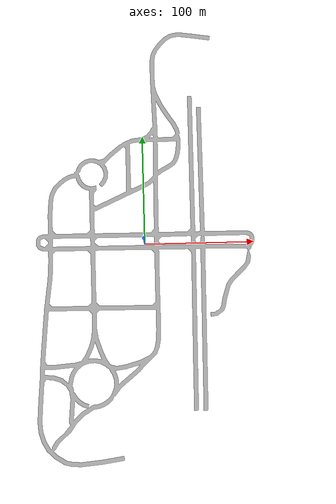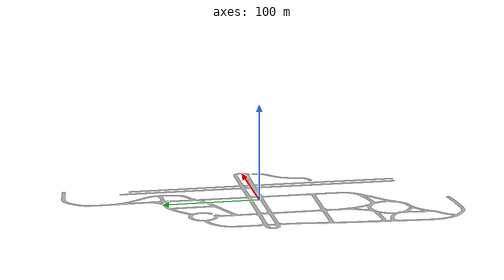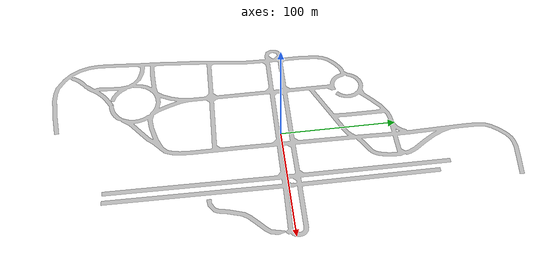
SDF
<sdf version='1.6'>
  <!-- This world file imports darpa.rndf file file sample into a clean world. -->
  <world name='mcity'>
    <gravity>0 0 -9.8</gravity>
    <magnetic_field>6e-06 2.3e-05 -4.2e-05</magnetic_field>
    <atmosphere type='adiabatic'/>
    <physics name='default_physics' default='0' type='ode'>
      <max_step_size>0.001</max_step_size>
      <real_time_factor>1</real_time_factor>
      <real_time_update_rate>1000</real_time_update_rate>
    </physics>
    <scene>
      <ambient>0.4 0.4 0.4 1</ambient>
      <background>0.7 0.7 0.7 1</background>
      <shadows>1</shadows>
    </scene>
    <wind/>
    <spherical_coordinates>
      <surface_model>EARTH_WGS84</surface_model>
      <latitude_deg>0</latitude_deg>
      <longitude_deg>0</longitude_deg>
      <elevation>0</elevation>
      <heading_deg>0</heading_deg>
    </spherical_coordinates>
    <gui fullscreen='0'>
      <camera name='user_camera'>
        <pose frame=''>25.7442 -168.253 46.0654 0 0.398797 1.54</pose>
        <view_controller>orbit</view_controller>
        <projection_type>perspective</projection_type>
      </camera>
    </gui>
    <model name='road'>
      <pose frame=''>0.0 0.0 0.0 0 -0 0</pose>
      <link name='road_link'>
        <inertial>
          <mass>1</mass>
          <inertia>
            <ixx>0.166667</ixx>
            <ixy>0</ixy>
            <ixz>0</ixz>
            <iyy>0.166667</iyy>
            <iyz>0</iyz>
            <izz>0.166667</izz>
          </inertia>
        </inertial>
        <visual name='road_visual'>
          <geometry>
            <mesh>
              <uri>meshes/mcity.obj</uri>
            </mesh>
          </geometry>
        </visual>
        <self_collide>0</self_collide>
        <kinematic>0</kinematic>
      </link>
    </model>
  </world>
</sdf>
